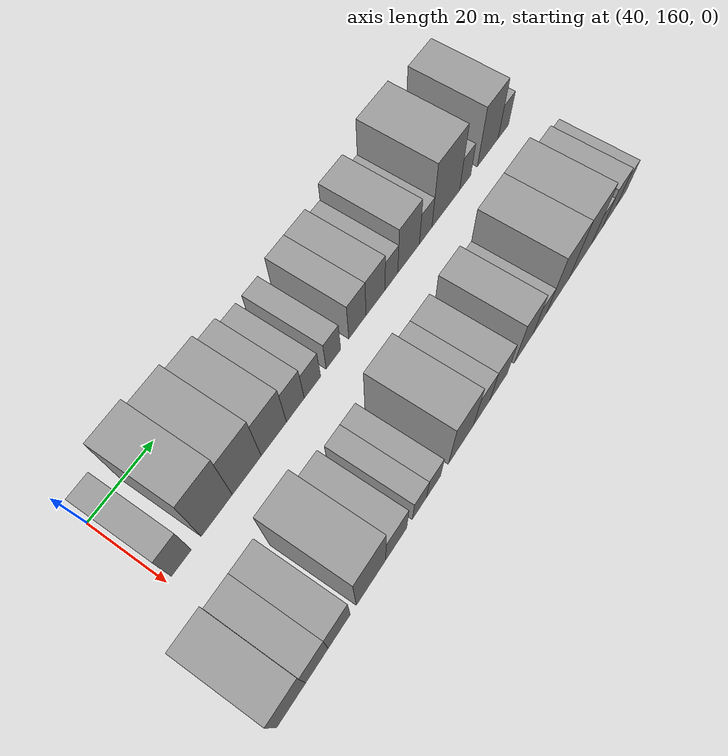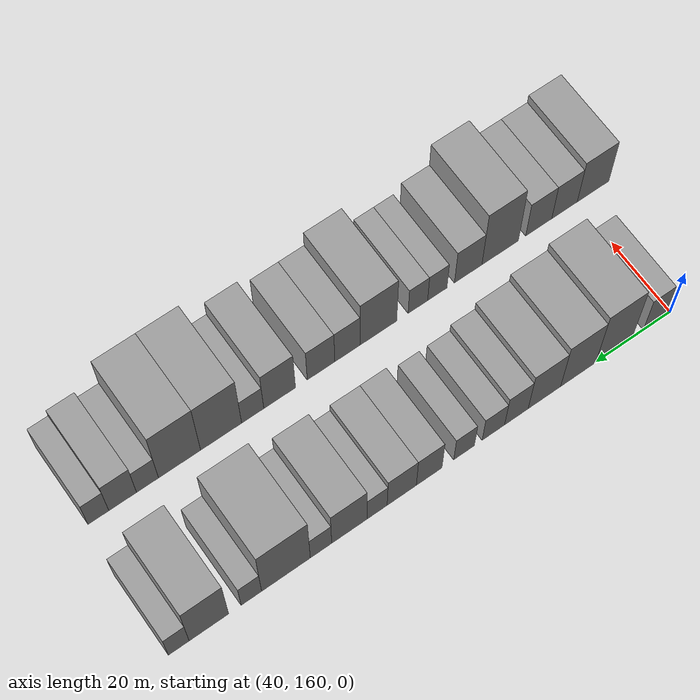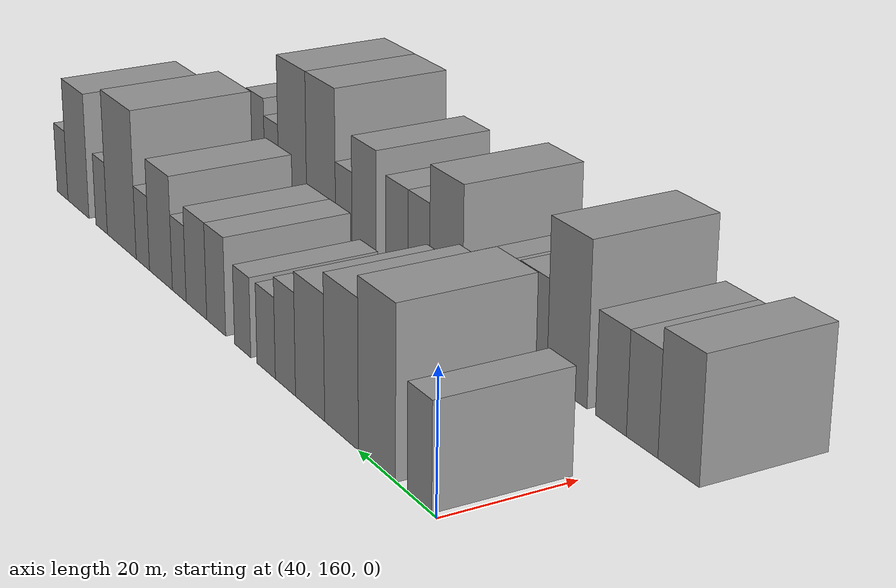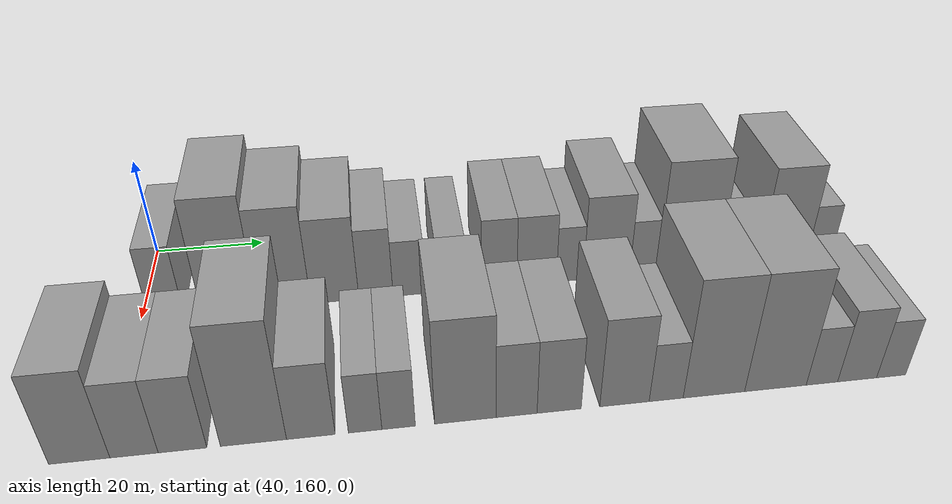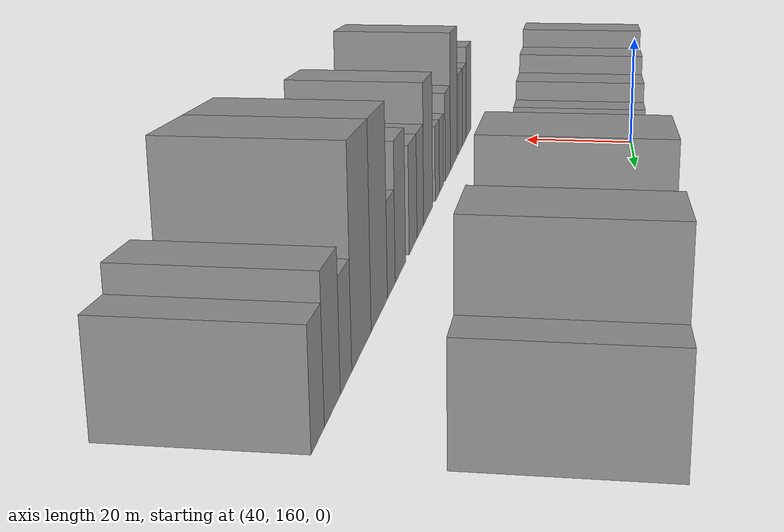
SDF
<sdf version="1.6">
 <world name="default">
  <model name="building_48">
   <static>1</static>
   <pose>50.0000 164.2977 0 0.000000 0.000000 0.000000</pose>
   <link name="link">
    <pose>0 0 7.50 0 0 0</pose>
    <collision name="collision"><geometry><box><size>20.0000 6.0026 15.0000</size></box></geometry></collision>
    <visual name="visual">
     <cast_shadows>0</cast_shadows>
     <geometry><box><size>20.0000 6.0026 15.0000</size></box></geometry>
     <material>
      <script>
       <uri>model://grey_wall/materials/scripts</uri>
       <uri>model://grey_wall/materials/textures</uri>
       <name>vrc/grey_wall</name>
      </script>
     </material>
    </visual>
   </link>
  </model>
  <model name="building_49">
   <static>1</static>
   <pose>50.0000 175.1931 0 0.000000 0.000000 0.000000</pose>
   <link name="link">
    <pose>0 0 12.00 0 0 0</pose>
    <collision name="collision"><geometry><box><size>20.0000 9.7882 24.0000</size></box></geometry></collision>
    <visual name="visual">
     <cast_shadows>0</cast_shadows>
     <geometry><box><size>20.0000 9.7882 24.0000</size></box></geometry>
     <material>
      <script>
       <uri>model://grey_wall/materials/scripts</uri>
       <uri>model://grey_wall/materials/textures</uri>
       <name>vrc/grey_wall</name>
      </script>
     </material>
    </visual>
   </link>
  </model>
  <model name="building_50">
   <static>1</static>
   <pose>50.0000 184.7946 0 0.000000 0.000000 0.000000</pose>
   <link name="link">
    <pose>0 0 10.50 0 0 0</pose>
    <collision name="collision"><geometry><box><size>20.0000 9.4149 21.0000</size></box></geometry></collision>
    <visual name="visual">
     <cast_shadows>0</cast_shadows>
     <geometry><box><size>20.0000 9.4149 21.0000</size></box></geometry>
     <material>
      <script>
       <uri>model://grey_wall/materials/scripts</uri>
       <uri>model://grey_wall/materials/textures</uri>
       <name>vrc/grey_wall</name>
      </script>
     </material>
    </visual>
   </link>
  </model>
  <model name="building_51">
   <static>1</static>
   <pose>50.0000 193.7850 0 0.000000 0.000000 0.000000</pose>
   <link name="link">
    <pose>0 0 9.00 0 0 0</pose>
    <collision name="collision"><geometry><box><size>20.0000 8.5659 18.0000</size></box></geometry></collision>
    <visual name="visual">
     <cast_shadows>0</cast_shadows>
     <geometry><box><size>20.0000 8.5659 18.0000</size></box></geometry>
     <material>
      <script>
       <uri>model://grey_wall/materials/scripts</uri>
       <uri>model://grey_wall/materials/textures</uri>
       <name>vrc/grey_wall</name>
      </script>
     </material>
    </visual>
   </link>
  </model>
  <model name="building_52">
   <static>1</static>
   <pose>50.0000 201.1514 0 0.000000 0.000000 0.000000</pose>
   <link name="link">
    <pose>0 0 7.50 0 0 0</pose>
    <collision name="collision"><geometry><box><size>20.0000 6.1670 15.0000</size></box></geometry></collision>
    <visual name="visual">
     <cast_shadows>0</cast_shadows>
     <geometry><box><size>20.0000 6.1670 15.0000</size></box></geometry>
     <material>
      <script>
       <uri>model://grey_wall/materials/scripts</uri>
       <uri>model://grey_wall/materials/textures</uri>
       <name>vrc/grey_wall</name>
      </script>
     </material>
    </visual>
   </link>
  </model>
  <model name="building_53">
   <static>1</static>
   <pose>50.0000 207.1415 0 0.000000 0.000000 0.000000</pose>
   <link name="link">
    <pose>0 0 6.00 0 0 0</pose>
    <collision name="collision"><geometry><box><size>20.0000 5.8132 12.0000</size></box></geometry></collision>
    <visual name="visual">
     <cast_shadows>0</cast_shadows>
     <geometry><box><size>20.0000 5.8132 12.0000</size></box></geometry>
     <material>
      <script>
       <uri>model://grey_wall/materials/scripts</uri>
       <uri>model://grey_wall/materials/textures</uri>
       <name>vrc/grey_wall</name>
      </script>
     </material>
    </visual>
   </link>
  </model>
  <model name="building_54">
   <static>1</static>
   <pose>50.0000 214.7163 0 0.000000 0.000000 0.000000</pose>
   <link name="link">
    <pose>0 0 6.00 0 0 0</pose>
    <collision name="collision"><geometry><box><size>20.0000 5.3364 12.0000</size></box></geometry></collision>
    <visual name="visual">
     <cast_shadows>0</cast_shadows>
     <geometry><box><size>20.0000 5.3364 12.0000</size></box></geometry>
     <material>
      <script>
       <uri>model://grey_wall/materials/scripts</uri>
       <uri>model://grey_wall/materials/textures</uri>
       <name>vrc/grey_wall</name>
      </script>
     </material>
    </visual>
   </link>
  </model>
  <model name="building_55">
   <static>1</static>
   <pose>50.0000 223.6519 0 0.000000 0.000000 0.000000</pose>
   <link name="link">
    <pose>0 0 7.50 0 0 0</pose>
    <collision name="collision"><geometry><box><size>20.0000 6.5347 15.0000</size></box></geometry></collision>
    <visual name="visual">
     <cast_shadows>0</cast_shadows>
     <geometry><box><size>20.0000 6.5347 15.0000</size></box></geometry>
     <material>
      <script>
       <uri>model://grey_wall/materials/scripts</uri>
       <uri>model://grey_wall/materials/textures</uri>
       <name>vrc/grey_wall</name>
      </script>
     </material>
    </visual>
   </link>
  </model>
  <model name="building_56">
   <static>1</static>
   <pose>50.0000 230.6128 0 0.000000 0.000000 0.000000</pose>
   <link name="link">
    <pose>0 0 7.50 0 0 0</pose>
    <collision name="collision"><geometry><box><size>20.0000 7.3871 15.0000</size></box></geometry></collision>
    <visual name="visual">
     <cast_shadows>0</cast_shadows>
     <geometry><box><size>20.0000 7.3871 15.0000</size></box></geometry>
     <material>
      <script>
       <uri>model://grey_wall/materials/scripts</uri>
       <uri>model://grey_wall/materials/textures</uri>
       <name>vrc/grey_wall</name>
      </script>
     </material>
    </visual>
   </link>
  </model>
  <model name="building_57">
   <static>1</static>
   <pose>50.0000 236.8439 0 0.000000 0.000000 0.000000</pose>
   <link name="link">
    <pose>0 0 6.00 0 0 0</pose>
    <collision name="collision"><geometry><box><size>20.0000 5.0752 12.0000</size></box></geometry></collision>
    <visual name="visual">
     <cast_shadows>0</cast_shadows>
     <geometry><box><size>20.0000 5.0752 12.0000</size></box></geometry>
     <material>
      <script>
       <uri>model://grey_wall/materials/scripts</uri>
       <uri>model://grey_wall/materials/textures</uri>
       <name>vrc/grey_wall</name>
      </script>
     </material>
    </visual>
   </link>
  </model>
  <model name="building_58">
   <static>1</static>
   <pose>50.0000 243.7710 0 0.000000 0.000000 0.000000</pose>
   <link name="link">
    <pose>0 0 9.00 0 0 0</pose>
    <collision name="collision"><geometry><box><size>20.0000 8.7789 18.0000</size></box></geometry></collision>
    <visual name="visual">
     <cast_shadows>0</cast_shadows>
     <geometry><box><size>20.0000 8.7789 18.0000</size></box></geometry>
     <material>
      <script>
       <uri>model://grey_wall/materials/scripts</uri>
       <uri>model://grey_wall/materials/textures</uri>
       <name>vrc/grey_wall</name>
      </script>
     </material>
    </visual>
   </link>
  </model>
  <model name="building_59">
   <static>1</static>
   <pose>50.0000 250.7922 0 0.000000 0.000000 0.000000</pose>
   <link name="link">
    <pose>0 0 6.00 0 0 0</pose>
    <collision name="collision"><geometry><box><size>20.0000 5.2635 12.0000</size></box></geometry></collision>
    <visual name="visual">
     <cast_shadows>0</cast_shadows>
     <geometry><box><size>20.0000 5.2635 12.0000</size></box></geometry>
     <material>
      <script>
       <uri>model://grey_wall/materials/scripts</uri>
       <uri>model://grey_wall/materials/textures</uri>
       <name>vrc/grey_wall</name>
      </script>
     </material>
    </visual>
   </link>
  </model>
  <model name="building_60">
   <static>1</static>
   <pose>50.0000 259.3824 0 0.000000 0.000000 0.000000</pose>
   <link name="link">
    <pose>0 0 12.00 0 0 0</pose>
    <collision name="collision"><geometry><box><size>20.0000 11.9169 24.0000</size></box></geometry></collision>
    <visual name="visual">
     <cast_shadows>0</cast_shadows>
     <geometry><box><size>20.0000 11.9169 24.0000</size></box></geometry>
     <material>
      <script>
       <uri>model://grey_wall/materials/scripts</uri>
       <uri>model://grey_wall/materials/textures</uri>
       <name>vrc/grey_wall</name>
      </script>
     </material>
    </visual>
   </link>
  </model>
  <model name="building_61">
   <static>1</static>
   <pose>50.0000 267.8239 0 0.000000 0.000000 0.000000</pose>
   <link name="link">
    <pose>0 0 6.00 0 0 0</pose>
    <collision name="collision"><geometry><box><size>20.0000 4.9660 12.0000</size></box></geometry></collision>
    <visual name="visual">
     <cast_shadows>0</cast_shadows>
     <geometry><box><size>20.0000 4.9660 12.0000</size></box></geometry>
     <material>
      <script>
       <uri>model://grey_wall/materials/scripts</uri>
       <uri>model://grey_wall/materials/textures</uri>
       <name>vrc/grey_wall</name>
      </script>
     </material>
    </visual>
   </link>
  </model>
  <model name="building_62">
   <static>1</static>
   <pose>50.0000 278.0380 0 0.000000 0.000000 0.000000</pose>
   <link name="link">
    <pose>0 0 10.50 0 0 0</pose>
    <collision name="collision"><geometry><box><size>20.0000 9.4623 21.0000</size></box></geometry></collision>
    <visual name="visual">
     <cast_shadows>0</cast_shadows>
     <geometry><box><size>20.0000 9.4623 21.0000</size></box></geometry>
     <material>
      <script>
       <uri>model://grey_wall/materials/scripts</uri>
       <uri>model://grey_wall/materials/textures</uri>
       <name>vrc/grey_wall</name>
      </script>
     </material>
    </visual>
   </link>
  </model>
  <model name="building_63">
   <static>1</static>
   <pose>50.0000 285.2360 0 0.000000 0.000000 0.000000</pose>
   <link name="link">
    <pose>0 0 6.00 0 0 0</pose>
    <collision name="collision"><geometry><box><size>20.0000 4.9337 12.0000</size></box></geometry></collision>
    <visual name="visual">
     <cast_shadows>0</cast_shadows>
     <geometry><box><size>20.0000 4.9337 12.0000</size></box></geometry>
     <material>
      <script>
       <uri>model://grey_wall/materials/scripts</uri>
       <uri>model://grey_wall/materials/textures</uri>
       <name>vrc/grey_wall</name>
      </script>
     </material>
    </visual>
   </link>
  </model>
  <model name="building_114">
   <static>1</static>
   <pose>82.0000 155.7561 0 0.000000 0.000000 0.000000</pose>
   <link name="link">
    <pose>0 0 9.00 0 0 0</pose>
    <collision name="collision"><geometry><box><size>20.0000 8.7845 18.0000</size></box></geometry></collision>
    <visual name="visual">
     <cast_shadows>0</cast_shadows>
     <geometry><box><size>20.0000 8.7845 18.0000</size></box></geometry>
     <material>
      <script>
       <uri>model://grey_wall/materials/scripts</uri>
       <uri>model://grey_wall/materials/textures</uri>
       <name>vrc/grey_wall</name>
      </script>
     </material>
    </visual>
   </link>
  </model>
  <model name="building_115">
   <static>1</static>
   <pose>82.0000 163.6476 0 0.000000 0.000000 0.000000</pose>
   <link name="link">
    <pose>0 0 7.50 0 0 0</pose>
    <collision name="collision"><geometry><box><size>20.0000 6.9985 15.0000</size></box></geometry></collision>
    <visual name="visual">
     <cast_shadows>0</cast_shadows>
     <geometry><box><size>20.0000 6.9985 15.0000</size></box></geometry>
     <material>
      <script>
       <uri>model://grey_wall/materials/scripts</uri>
       <uri>model://grey_wall/materials/textures</uri>
       <name>vrc/grey_wall</name>
      </script>
     </material>
    </visual>
   </link>
  </model>
  <model name="building_116">
   <static>1</static>
   <pose>82.0000 170.7134 0 0.000000 0.000000 0.000000</pose>
   <link name="link">
    <pose>0 0 7.50 0 0 0</pose>
    <collision name="collision"><geometry><box><size>20.0000 7.1330 15.0000</size></box></geometry></collision>
    <visual name="visual">
     <cast_shadows>0</cast_shadows>
     <geometry><box><size>20.0000 7.1330 15.0000</size></box></geometry>
     <material>
      <script>
       <uri>model://grey_wall/materials/scripts</uri>
       <uri>model://grey_wall/materials/textures</uri>
       <name>vrc/grey_wall</name>
      </script>
     </material>
    </visual>
   </link>
  </model>
  <model name="building_117">
   <static>1</static>
   <pose>82.0000 181.2088 0 0.000000 0.000000 0.000000</pose>
   <link name="link">
    <pose>0 0 12.00 0 0 0</pose>
    <collision name="collision"><geometry><box><size>20.0000 9.8578 24.0000</size></box></geometry></collision>
    <visual name="visual">
     <cast_shadows>0</cast_shadows>
     <geometry><box><size>20.0000 9.8578 24.0000</size></box></geometry>
     <material>
      <script>
       <uri>model://grey_wall/materials/scripts</uri>
       <uri>model://grey_wall/materials/textures</uri>
       <name>vrc/grey_wall</name>
      </script>
     </material>
    </visual>
   </link>
  </model>
  <model name="building_118">
   <static>1</static>
   <pose>82.0000 189.8162 0 0.000000 0.000000 0.000000</pose>
   <link name="link">
    <pose>0 0 7.50 0 0 0</pose>
    <collision name="collision"><geometry><box><size>20.0000 7.3570 15.0000</size></box></geometry></collision>
    <visual name="visual">
     <cast_shadows>0</cast_shadows>
     <geometry><box><size>20.0000 7.3570 15.0000</size></box></geometry>
     <material>
      <script>
       <uri>model://grey_wall/materials/scripts</uri>
       <uri>model://grey_wall/materials/textures</uri>
       <name>vrc/grey_wall</name>
      </script>
     </material>
    </visual>
   </link>
  </model>
  <model name="building_119">
   <static>1</static>
   <pose>82.0000 198.0587 0 0.000000 0.000000 0.000000</pose>
   <link name="link">
    <pose>0 0 6.00 0 0 0</pose>
    <collision name="collision"><geometry><box><size>20.0000 5.1281 12.0000</size></box></geometry></collision>
    <visual name="visual">
     <cast_shadows>0</cast_shadows>
     <geometry><box><size>20.0000 5.1281 12.0000</size></box></geometry>
     <material>
      <script>
       <uri>model://grey_wall/materials/scripts</uri>
       <uri>model://grey_wall/materials/textures</uri>
       <name>vrc/grey_wall</name>
      </script>
     </material>
    </visual>
   </link>
  </model>
  <model name="building_120">
   <static>1</static>
   <pose>82.0000 203.1987 0 0.000000 0.000000 0.000000</pose>
   <link name="link">
    <pose>0 0 6.00 0 0 0</pose>
    <collision name="collision"><geometry><box><size>20.0000 5.1518 12.0000</size></box></geometry></collision>
    <visual name="visual">
     <cast_shadows>0</cast_shadows>
     <geometry><box><size>20.0000 5.1518 12.0000</size></box></geometry>
     <material>
      <script>
       <uri>model://grey_wall/materials/scripts</uri>
       <uri>model://grey_wall/materials/textures</uri>
       <name>vrc/grey_wall</name>
      </script>
     </material>
    </visual>
   </link>
  </model>
  <model name="building_121">
   <static>1</static>
   <pose>82.0000 213.5785 0 0.000000 0.000000 0.000000</pose>
   <link name="link">
    <pose>0 0 10.50 0 0 0</pose>
    <collision name="collision"><geometry><box><size>20.0000 9.6078 21.0000</size></box></geometry></collision>
    <visual name="visual">
     <cast_shadows>0</cast_shadows>
     <geometry><box><size>20.0000 9.6078 21.0000</size></box></geometry>
     <material>
      <script>
       <uri>model://grey_wall/materials/scripts</uri>
       <uri>model://grey_wall/materials/textures</uri>
       <name>vrc/grey_wall</name>
      </script>
     </material>
    </visual>
   </link>
  </model>
  <model name="building_122">
   <static>1</static>
   <pose>82.0000 221.6331 0 0.000000 0.000000 0.000000</pose>
   <link name="link">
    <pose>0 0 7.50 0 0 0</pose>
    <collision name="collision"><geometry><box><size>20.0000 6.5015 15.0000</size></box></geometry></collision>
    <visual name="visual">
     <cast_shadows>0</cast_shadows>
     <geometry><box><size>20.0000 6.5015 15.0000</size></box></geometry>
     <material>
      <script>
       <uri>model://grey_wall/materials/scripts</uri>
       <uri>model://grey_wall/materials/textures</uri>
       <name>vrc/grey_wall</name>
      </script>
     </material>
    </visual>
   </link>
  </model>
  <model name="building_123">
   <static>1</static>
   <pose>82.0000 228.4155 0 0.000000 0.000000 0.000000</pose>
   <link name="link">
    <pose>0 0 7.50 0 0 0</pose>
    <collision name="collision"><geometry><box><size>20.0000 7.0634 15.0000</size></box></geometry></collision>
    <visual name="visual">
     <cast_shadows>0</cast_shadows>
     <geometry><box><size>20.0000 7.0634 15.0000</size></box></geometry>
     <material>
      <script>
       <uri>model://grey_wall/materials/scripts</uri>
       <uri>model://grey_wall/materials/textures</uri>
       <name>vrc/grey_wall</name>
      </script>
     </material>
    </visual>
   </link>
  </model>
  <model name="building_124">
   <static>1</static>
   <pose>82.0000 238.9627 0 0.000000 0.000000 0.000000</pose>
   <link name="link">
    <pose>0 0 9.00 0 0 0</pose>
    <collision name="collision"><geometry><box><size>20.0000 8.0309 18.0000</size></box></geometry></collision>
    <visual name="visual">
     <cast_shadows>0</cast_shadows>
     <geometry><box><size>20.0000 8.0309 18.0000</size></box></geometry>
     <material>
      <script>
       <uri>model://grey_wall/materials/scripts</uri>
       <uri>model://grey_wall/materials/textures</uri>
       <name>vrc/grey_wall</name>
      </script>
     </material>
    </visual>
   </link>
  </model>
  <model name="building_125">
   <static>1</static>
   <pose>82.0000 245.7702 0 0.000000 0.000000 0.000000</pose>
   <link name="link">
    <pose>0 0 6.00 0 0 0</pose>
    <collision name="collision"><geometry><box><size>20.0000 5.5842 12.0000</size></box></geometry></collision>
    <visual name="visual">
     <cast_shadows>0</cast_shadows>
     <geometry><box><size>20.0000 5.5842 12.0000</size></box></geometry>
     <material>
      <script>
       <uri>model://grey_wall/materials/scripts</uri>
       <uri>model://grey_wall/materials/textures</uri>
       <name>vrc/grey_wall</name>
      </script>
     </material>
    </visual>
   </link>
  </model>
  <model name="building_126">
   <static>1</static>
   <pose>82.0000 253.6776 0 0.000000 0.000000 0.000000</pose>
   <link name="link">
    <pose>0 0 12.00 0 0 0</pose>
    <collision name="collision"><geometry><box><size>20.0000 10.2306 24.0000</size></box></geometry></collision>
    <visual name="visual">
     <cast_shadows>0</cast_shadows>
     <geometry><box><size>20.0000 10.2306 24.0000</size></box></geometry>
     <material>
      <script>
       <uri>model://grey_wall/materials/scripts</uri>
       <uri>model://grey_wall/materials/textures</uri>
       <name>vrc/grey_wall</name>
      </script>
     </material>
    </visual>
   </link>
  </model>
  <model name="building_127">
   <static>1</static>
   <pose>82.0000 263.9941 0 0.000000 0.000000 0.000000</pose>
   <link name="link">
    <pose>0 0 12.00 0 0 0</pose>
    <collision name="collision"><geometry><box><size>20.0000 10.4025 24.0000</size></box></geometry></collision>
    <visual name="visual">
     <cast_shadows>0</cast_shadows>
     <geometry><box><size>20.0000 10.4025 24.0000</size></box></geometry>
     <material>
      <script>
       <uri>model://grey_wall/materials/scripts</uri>
       <uri>model://grey_wall/materials/textures</uri>
       <name>vrc/grey_wall</name>
      </script>
     </material>
    </visual>
   </link>
  </model>
  <model name="building_128">
   <static>1</static>
   <pose>82.0000 271.8763 0 0.000000 0.000000 0.000000</pose>
   <link name="link">
    <pose>0 0 6.00 0 0 0</pose>
    <collision name="collision"><geometry><box><size>20.0000 5.3619 12.0000</size></box></geometry></collision>
    <visual name="visual">
     <cast_shadows>0</cast_shadows>
     <geometry><box><size>20.0000 5.3619 12.0000</size></box></geometry>
     <material>
      <script>
       <uri>model://grey_wall/materials/scripts</uri>
       <uri>model://grey_wall/materials/textures</uri>
       <name>vrc/grey_wall</name>
      </script>
     </material>
    </visual>
   </link>
  </model>
  <model name="building_129">
   <static>1</static>
   <pose>82.0000 277.9177 0 0.000000 0.000000 0.000000</pose>
   <link name="link">
    <pose>0 0 7.50 0 0 0</pose>
    <collision name="collision"><geometry><box><size>20.0000 6.7208 15.0000</size></box></geometry></collision>
    <visual name="visual">
     <cast_shadows>0</cast_shadows>
     <geometry><box><size>20.0000 6.7208 15.0000</size></box></geometry>
     <material>
      <script>
       <uri>model://grey_wall/materials/scripts</uri>
       <uri>model://grey_wall/materials/textures</uri>
       <name>vrc/grey_wall</name>
      </script>
     </material>
    </visual>
   </link>
  </model>
  <model name="building_130">
   <static>1</static>
   <pose>82.0000 283.7989 0 0.000000 0.000000 0.000000</pose>
   <link name="link">
    <pose>0 0 6.00 0 0 0</pose>
    <collision name="collision"><geometry><box><size>20.0000 5.0415 12.0000</size></box></geometry></collision>
    <visual name="visual">
     <cast_shadows>0</cast_shadows>
     <geometry><box><size>20.0000 5.0415 12.0000</size></box></geometry>
     <material>
      <script>
       <uri>model://grey_wall/materials/scripts</uri>
       <uri>model://grey_wall/materials/textures</uri>
       <name>vrc/grey_wall</name>
      </script>
     </material>
    </visual>
   </link>
  </model>
 </world>
</sdf>
